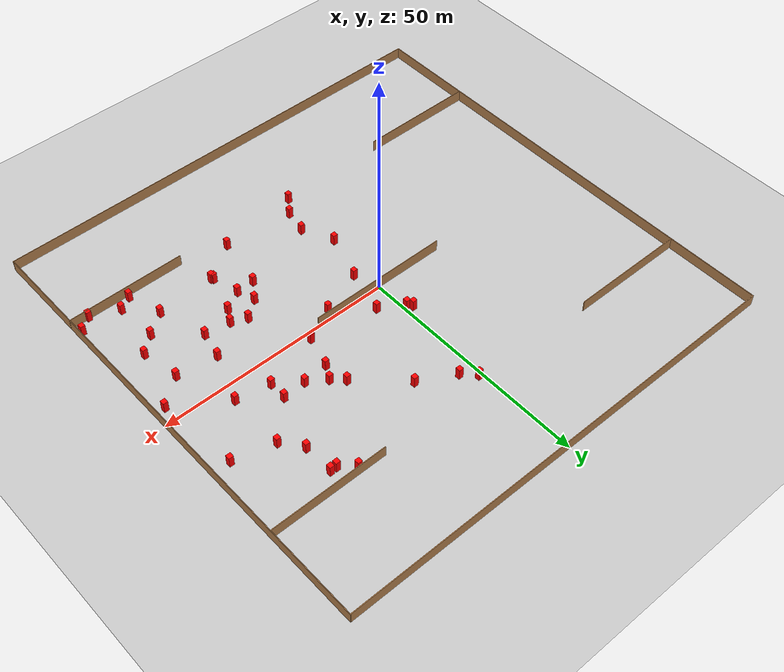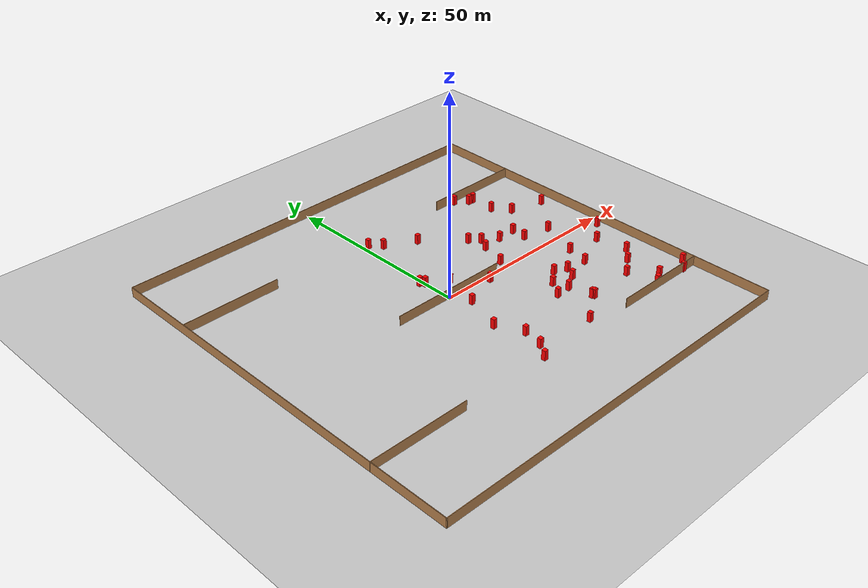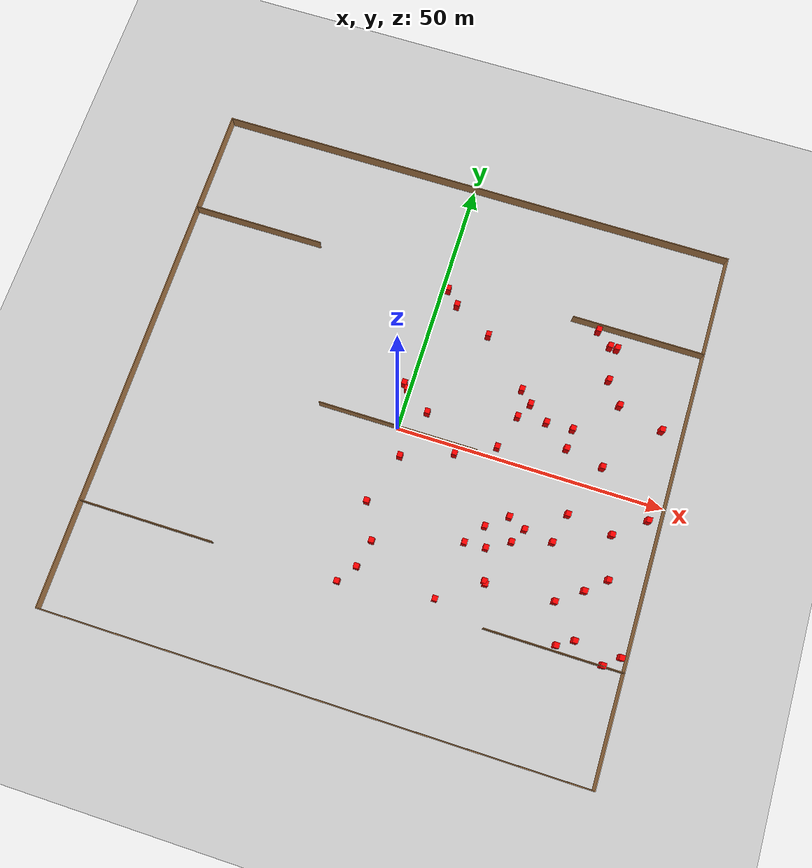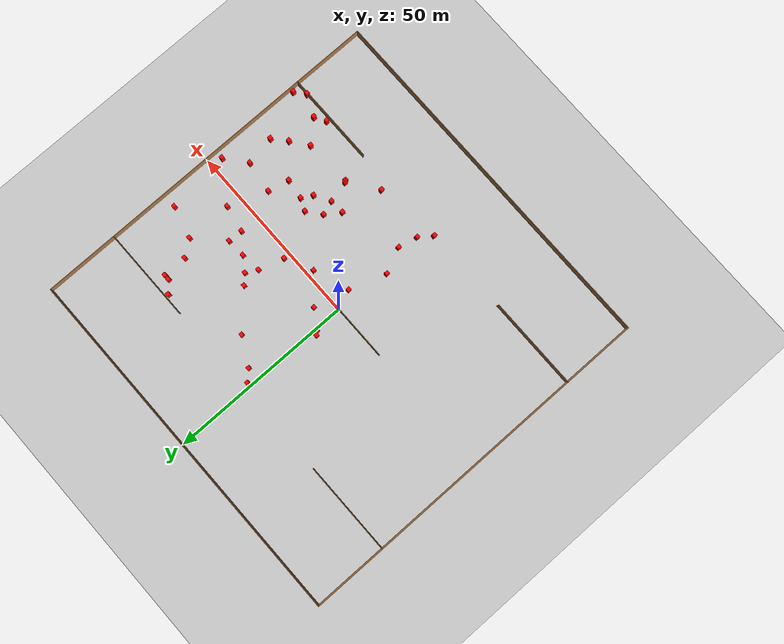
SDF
<sdf version="1.7">
 <world name="default">
  <model name="ground_plane">
   <static>1</static>
   <link name="link">
    <collision name="collision">
     <geometry><plane><normal>0 0 1</normal><size>100 100</size></plane></geometry>
     <surface>
      <contact><collide_bitmask>65535</collide_bitmask></contact>
      <friction><ode><mu>100</mu><mu2>50</mu2></ode></friction>
     </surface>
    </collision>
    <visual name="visual">
     <cast_shadows>0</cast_shadows>
     <geometry><plane><normal>0 0 1</normal><size>100 100</size></plane></geometry>
     <material>
      <script><uri>file://media/materials/scripts/gazebo.material</uri><name>Gazebo/Grey</name></script>
     </material>
    </visual>
   </link>
  </model>
  <model name="my_base_walls">
   <link name="Wall_0">
    <collision name="Wall_0_Collision">
     <geometry><box><size>100.15 0.15 2.5</size></box></geometry>
     <pose>0 0 1.25 0 -0 0</pose>
    </collision>
    <visual name="Wall_0_Visual">
     <pose>0 0 1.25 0 -0 0</pose>
     <geometry><box><size>100.15 0.15 2.5</size></box></geometry>
     <material>
      <script><uri>file://media/materials/scripts/gazebo.material</uri><name>Gazebo/Wood</name></script>
      <ambient>1 1 1 1</ambient>
     </material>
     <meta><layer>0</layer></meta>
    </visual>
    <pose>0 -50 0 0 -0 0</pose>
   </link>
   <link name="Wall_10">
    <collision name="Wall_10_Collision">
     <geometry><box><size>25.15 0.15 2.5</size></box></geometry>
     <pose>0 0 1.25 0 -0 0</pose>
    </collision>
    <visual name="Wall_10_Visual">
     <pose>0 0 1.25 0 -0 0</pose>
     <geometry><box><size>25.15 0.15 2.5</size></box></geometry>
     <material>
      <script><uri>file://media/materials/scripts/gazebo.material</uri><name>Gazebo/Wood</name></script>
      <ambient>1 1 1 1</ambient>
     </material>
     <meta><layer>0</layer></meta>
    </visual>
    <pose>37.5 30 0 0 -0 0</pose>
   </link>
   <link name="Wall_12">
    <collision name="Wall_12_Collision">
     <geometry><box><size>25.15 0.15 2.5</size></box></geometry>
     <pose>0 0 1.25 0 -0 0</pose>
    </collision>
    <visual name="Wall_12_Visual">
     <pose>0 0 1.25 0 -0 0</pose>
     <geometry><box><size>25.15 0.15 2.5</size></box></geometry>
     <material>
      <script><uri>file://media/materials/scripts/gazebo.material</uri><name>Gazebo/Wood</name></script>
      <ambient>1 1 1 1</ambient>
     </material>
     <meta><layer>0</layer></meta>
    </visual>
    <pose>-37.5 -30 0 0 -0 0</pose>
   </link>
   <link name="Wall_14">
    <collision name="Wall_14_Collision">
     <geometry><box><size>25.15 0.15 2.5</size></box></geometry>
     <pose>0 0 1.25 0 -0 0</pose>
    </collision>
    <visual name="Wall_14_Visual">
     <pose>0 0 1.25 0 -0 0</pose>
     <geometry><box><size>25.15 0.15 2.5</size></box></geometry>
     <material>
      <script><uri>file://media/materials/scripts/gazebo.material</uri><name>Gazebo/Wood</name></script>
      <ambient>1 1 1 1</ambient>
     </material>
     <meta><layer>0</layer></meta>
    </visual>
    <pose>37.5 -30 0 0 -0 0</pose>
   </link>
   <link name="Wall_16">
    <collision name="Wall_16_Collision">
     <geometry><box><size>30.15 0.15 2.5</size></box></geometry>
     <pose>0 0 1.25 0 -0 0</pose>
    </collision>
    <visual name="Wall_16_Visual">
     <pose>0 0 1.25 0 -0 0</pose>
     <geometry><box><size>30.15 0.15 2.5</size></box></geometry>
     <material>
      <script><uri>file://media/materials/scripts/gazebo.material</uri><name>Gazebo/Wood</name></script>
      <ambient>1 1 1 1</ambient>
     </material>
     <meta><layer>0</layer></meta>
    </visual>
    <pose>0 0 0 0 -0 3.14159</pose>
   </link>
   <link name="Wall_2">
    <collision name="Wall_2_Collision">
     <geometry><box><size>100.15 0.15 2.5</size></box></geometry>
     <pose>0 0 1.25 0 -0 0</pose>
    </collision>
    <visual name="Wall_2_Visual">
     <pose>0 0 1.25 0 -0 0</pose>
     <geometry><box><size>100.15 0.15 2.5</size></box></geometry>
     <material>
      <script><uri>file://media/materials/scripts/gazebo.material</uri><name>Gazebo/Wood</name></script>
      <ambient>1 1 1 1</ambient>
     </material>
     <meta><layer>0</layer></meta>
    </visual>
    <pose>0 50 0 0 -0 3.14159</pose>
   </link>
   <link name="Wall_4">
    <collision name="Wall_4_Collision">
     <geometry><box><size>100.15 0.15 2.5</size></box></geometry>
     <pose>0 0 1.25 0 -0 0</pose>
    </collision>
    <visual name="Wall_4_Visual">
     <pose>0 0 1.25 0 -0 0</pose>
     <geometry><box><size>100.15 0.15 2.5</size></box></geometry>
     <material>
      <script><uri>file://media/materials/scripts/gazebo.material</uri><name>Gazebo/Wood</name></script>
      <ambient>1 1 1 1</ambient>
     </material>
     <meta><layer>0</layer></meta>
    </visual>
    <pose>50 0 0 0 -0 -1.5708</pose>
   </link>
   <link name="Wall_6">
    <collision name="Wall_6_Collision">
     <geometry><box><size>100.15 0.15 2.5</size></box></geometry>
     <pose>0 0 1.25 0 -0 0</pose>
    </collision>
    <visual name="Wall_6_Visual">
     <pose>0 0 1.25 0 -0 0</pose>
     <geometry><box><size>100.15 0.15 2.5</size></box></geometry>
     <material>
      <script><uri>file://media/materials/scripts/gazebo.material</uri><name>Gazebo/Wood</name></script>
      <ambient>1 1 1 1</ambient>
     </material>
     <meta><layer>0</layer></meta>
    </visual>
    <pose>-50 0 0 0 -0 1.5708</pose>
   </link>
   <link name="Wall_8">
    <collision name="Wall_8_Collision">
     <geometry><box><size>25.15 0.15 2.5</size></box></geometry>
     <pose>0 0 1.25 0 -0 0</pose>
    </collision>
    <visual name="Wall_8_Visual">
     <pose>0 0 1.25 0 -0 0</pose>
     <geometry><box><size>25.15 0.15 2.5</size></box></geometry>
     <material>
      <script><uri>file://media/materials/scripts/gazebo.material</uri><name>Gazebo/Wood</name></script>
      <ambient>1 1 1 1</ambient>
     </material>
     <meta><layer>0</layer></meta>
    </visual>
    <pose>-37.5 30 0 0 -0 0</pose>
   </link>
   <static>1</static>
  </model>
  <model name="box3">
   <static>1</static>
   <link name="link">
    <inertial>
     <mass>1</mass>
     <inertia><ixx>0.083</ixx><ixy>0</ixy><ixz>0</ixz><iyy>0.083</iyy><iyz>0</iyz><izz>0.083</izz></inertia>
    </inertial>
    <collision name="collision"><geometry><box><size>1 1 2.5</size></box></geometry></collision>
    <visual name="visual">
     <geometry><box><size>1 1 2.5</size></box></geometry>
     <material>
      <ambient>1 0 0 1</ambient>
      <diffuse>1 0 0 1</diffuse>
      <specular>0.1 0.1 0.1 1</specular>
      <emissive>0 0 0 0</emissive>
     </material>
    </visual>
   </link>
   <pose>23.1763 -22.4759 1.25 0 -0 0</pose>
  </model>
  <model name="box5">
   <static>1</static>
   <link name="link">
    <inertial>
     <mass>1</mass>
     <inertia><ixx>0.083</ixx><ixy>0</ixy><ixz>0</ixz><iyy>0.083</iyy><iyz>0</iyz><izz>0.083</izz></inertia>
    </inertial>
    <collision name="collision"><geometry><box><size>1 1 2.5</size></box></geometry></collision>
    <visual name="visual">
     <geometry><box><size>1 1 2.5</size></box></geometry>
     <material>
      <ambient>1 0 0 1</ambient>
      <diffuse>1 0 0 1</diffuse>
      <specular>0.1 0.1 0.1 1</specular>
      <emissive>0 0 0 0</emissive>
     </material>
    </visual>
   </link>
   <pose>25.5556 -14.0156 1.25 0 -0 0</pose>
  </model>
  <model name="box6">
   <static>1</static>
   <link name="link">
    <inertial>
     <mass>1</mass>
     <inertia><ixx>0.083</ixx><ixy>0</ixy><ixz>0</ixz><iyy>0.083</iyy><iyz>0</iyz><izz>0.083</izz></inertia>
    </inertial>
    <collision name="collision"><geometry><box><size>1 1 2.5</size></box></geometry></collision>
    <visual name="visual">
     <geometry><box><size>1 1 2.5</size></box></geometry>
     <material>
      <ambient>1 0 0 1</ambient>
      <diffuse>1 0 0 1</diffuse>
      <specular>0.1 0.1 0.1 1</specular>
      <emissive>0 0 0 0</emissive>
     </material>
    </visual>
   </link>
   <pose>10.8495 21.9933 1.25 0 -0 0</pose>
  </model>
  <model name="box8">
   <static>1</static>
   <link name="link">
    <inertial>
     <mass>1</mass>
     <inertia><ixx>0.083</ixx><ixy>0</ixy><ixz>0</ixz><iyy>0.083</iyy><iyz>0</iyz><izz>0.083</izz></inertia>
    </inertial>
    <collision name="collision"><geometry><box><size>1 1 2.5</size></box></geometry></collision>
    <visual name="visual">
     <geometry><box><size>1 1 2.5</size></box></geometry>
     <material>
      <ambient>1 0 0 1</ambient>
      <diffuse>1 0 0 1</diffuse>
      <specular>0.1 0.1 0.1 1</specular>
      <emissive>0 0 0 0</emissive>
     </material>
    </visual>
   </link>
   <pose>2.00673 -4.99949 1.25 0 -0 0</pose>
  </model>
  <model name="box9">
   <static>1</static>
   <link name="link">
    <inertial>
     <mass>1</mass>
     <inertia><ixx>0.083</ixx><ixy>0</ixy><ixz>0</ixz><iyy>0.083</iyy><iyz>0</iyz><izz>0.083</izz></inertia>
    </inertial>
    <collision name="collision"><geometry><box><size>1 1 2.5</size></box></geometry></collision>
    <visual name="visual">
     <geometry><box><size>1 1 2.5</size></box></geometry>
     <material>
      <ambient>1 0 0 1</ambient>
      <diffuse>1 0 0 1</diffuse>
      <specular>0.1 0.1 0.1 1</specular>
      <emissive>0 0 0 0</emissive>
     </material>
    </visual>
   </link>
   <pose>20.3451 8.47321 1.25 0 -0 0</pose>
  </model>
  <model name="box14">
   <static>1</static>
   <link name="link">
    <inertial>
     <mass>1</mass>
     <inertia><ixx>0.083</ixx><ixy>0</ixy><ixz>0</ixz><iyy>0.083</iyy><iyz>0</iyz><izz>0.083</izz></inertia>
    </inertial>
    <collision name="collision"><geometry><box><size>1 1 2.5</size></box></geometry></collision>
    <visual name="visual">
     <geometry><box><size>1 1 2.5</size></box></geometry>
     <material>
      <ambient>1 0 0 1</ambient>
      <diffuse>1 0 0 1</diffuse>
      <specular>0.1 0.1 0.1 1</specular>
      <emissive>0 0 0 0</emissive>
     </material>
    </visual>
   </link>
   <pose>37.737 -28.9766 1.25 0 -0 0</pose>
  </model>
  <model name="box16">
   <static>1</static>
   <link name="link">
    <inertial>
     <mass>1</mass>
     <inertia><ixx>0.083</ixx><ixy>0</ixy><ixz>0</ixz><iyy>0.083</iyy><iyz>0</iyz><izz>0.083</izz></inertia>
    </inertial>
    <collision name="collision"><geometry><box><size>1 1 2.5</size></box></geometry></collision>
    <visual name="visual">
     <geometry><box><size>1 1 2.5</size></box></geometry>
     <material>
      <ambient>1 0 0 1</ambient>
      <diffuse>1 0 0 1</diffuse>
      <specular>0.1 0.1 0.1 1</specular>
      <emissive>0 0 0 0</emissive>
     </material>
    </visual>
   </link>
   <pose>4.33282 4.29537 1.25 0 -0 0</pose>
  </model>
  <model name="box21">
   <static>1</static>
   <link name="link">
    <inertial>
     <mass>1</mass>
     <inertia><ixx>0.083</ixx><ixy>0</ixy><ixz>0</ixz><iyy>0.083</iyy><iyz>0</iyz><izz>0.083</izz></inertia>
    </inertial>
    <collision name="collision"><geometry><box><size>1 1 2.5</size></box></geometry></collision>
    <visual name="visual">
     <geometry><box><size>1 1 2.5</size></box></geometry>
     <material>
      <ambient>1 0 0 1</ambient>
      <diffuse>1 0 0 1</diffuse>
      <specular>0.1 0.1 0.1 1</specular>
      <emissive>0 0 0 0</emissive>
     </material>
    </visual>
   </link>
   <pose>0.722035 -26.3664 1.25 0 -0 0</pose>
  </model>
  <model name="box25">
   <static>1</static>
   <link name="link">
    <inertial>
     <mass>1</mass>
     <inertia><ixx>0.083</ixx><ixy>0</ixy><ixz>0</ixz><iyy>0.083</iyy><iyz>0</iyz><izz>0.083</izz></inertia>
    </inertial>
    <collision name="collision"><geometry><box><size>1 1 2.5</size></box></geometry></collision>
    <visual name="visual">
     <geometry><box><size>1 1 2.5</size></box></geometry>
     <material>
      <ambient>1 0 0 1</ambient>
      <diffuse>1 0 0 1</diffuse>
      <specular>0.1 0.1 0.1 1</specular>
      <emissive>0 0 0 0</emissive>
     </material>
    </visual>
   </link>
   <pose>40.6324 -27.2331 1.25 0 -0 0</pose>
  </model>
  <model name="box26">
   <static>1</static>
   <link name="link">
    <inertial>
     <mass>1</mass>
     <inertia><ixx>0.083</ixx><ixy>0</ixy><ixz>0</ixz><iyy>0.083</iyy><iyz>0</iyz><izz>0.083</izz></inertia>
    </inertial>
    <collision name="collision"><geometry><box><size>1 1 2.5</size></box></geometry></collision>
    <visual name="visual">
     <geometry><box><size>1 1 2.5</size></box></geometry>
     <material>
      <ambient>1 0 0 1</ambient>
      <diffuse>1 0 0 1</diffuse>
      <specular>0.1 0.1 0.1 1</specular>
      <emissive>0 0 0 0</emissive>
     </material>
    </visual>
   </link>
   <pose>43.5856 -15.3946 1.25 0 -0 0</pose>
  </model>
  <model name="box28">
   <static>1</static>
   <link name="link">
    <inertial>
     <mass>1</mass>
     <inertia><ixx>0.083</ixx><ixy>0</ixy><ixz>0</ixz><iyy>0.083</iyy><iyz>0</iyz><izz>0.083</izz></inertia>
    </inertial>
    <collision name="collision"><geometry><box><size>1 1 2.5</size></box></geometry></collision>
    <visual name="visual">
     <geometry><box><size>1 1 2.5</size></box></geometry>
     <material>
      <ambient>1 0 0 1</ambient>
      <diffuse>1 0 0 1</diffuse>
      <specular>0.1 0.1 0.1 1</specular>
      <emissive>0 0 0 0</emissive>
     </material>
    </visual>
   </link>
   <pose>49.0233 -27.6356 1.25 0 -0 0</pose>
  </model>
  <model name="box30">
   <static>1</static>
   <link name="link">
    <inertial>
     <mass>1</mass>
     <inertia><ixx>0.083</ixx><ixy>0</ixy><ixz>0</ixz><iyy>0.083</iyy><iyz>0</iyz><izz>0.083</izz></inertia>
    </inertial>
    <collision name="collision"><geometry><box><size>1 1 2.5</size></box></geometry></collision>
    <visual name="visual">
     <geometry><box><size>1 1 2.5</size></box></geometry>
     <material>
      <ambient>1 0 0 1</ambient>
      <diffuse>1 0 0 1</diffuse>
      <specular>0.1 0.1 0.1 1</specular>
      <emissive>0 0 0 0</emissive>
     </material>
    </visual>
   </link>
   <pose>30.5931 9.21803 1.25 0 -0 0</pose>
  </model>
  <model name="box31">
   <static>1</static>
   <link name="link">
    <inertial>
     <mass>1</mass>
     <inertia><ixx>0.083</ixx><ixy>0</ixy><ixz>0</ixz><iyy>0.083</iyy><iyz>0</iyz><izz>0.083</izz></inertia>
    </inertial>
    <collision name="collision"><geometry><box><size>1 1 2.5</size></box></geometry></collision>
    <visual name="visual">
     <geometry><box><size>1 1 2.5</size></box></geometry>
     <material>
      <ambient>1 0 0 1</ambient>
      <diffuse>1 0 0 1</diffuse>
      <specular>0.1 0.1 0.1 1</specular>
      <emissive>0 0 0 0</emissive>
     </material>
    </visual>
   </link>
   <pose>-1.77396 -29.8208 1.25 0 -0 0</pose>
  </model>
  <model name="box32">
   <static>1</static>
   <link name="link">
    <inertial>
     <mass>1</mass>
     <inertia><ixx>0.083</ixx><ixy>0</ixy><ixz>0</ixz><iyy>0.083</iyy><iyz>0</iyz><izz>0.083</izz></inertia>
    </inertial>
    <collision name="collision"><geometry><box><size>1 1 2.5</size></box></geometry></collision>
    <visual name="visual">
     <geometry><box><size>1 1 2.5</size></box></geometry>
     <material>
      <ambient>1 0 0 1</ambient>
      <diffuse>1 0 0 1</diffuse>
      <specular>0.1 0.1 0.1 1</specular>
      <emissive>0 0 0 0</emissive>
     </material>
    </visual>
   </link>
   <pose>42.1976 -7.45792 1.25 0 -0 0</pose>
  </model>
  <model name="box36">
   <static>1</static>
   <link name="link">
    <inertial>
     <mass>1</mass>
     <inertia><ixx>0.083</ixx><ixy>0</ixy><ixz>0</ixz><iyy>0.083</iyy><iyz>0</iyz><izz>0.083</izz></inertia>
    </inertial>
    <collision name="collision"><geometry><box><size>1 1 2.5</size></box></geometry></collision>
    <visual name="visual">
     <geometry><box><size>1 1 2.5</size></box></geometry>
     <material>
      <ambient>1 0 0 1</ambient>
      <diffuse>1 0 0 1</diffuse>
      <specular>0.1 0.1 0.1 1</specular>
      <emissive>0 0 0 0</emissive>
     </material>
    </visual>
   </link>
   <pose>32.4796 -11.8787 1.25 0 -0 0</pose>
  </model>
  <model name="box37">
   <static>1</static>
   <link name="link">
    <inertial>
     <mass>1</mass>
     <inertia><ixx>0.083</ixx><ixy>0</ixy><ixz>0</ixz><iyy>0.083</iyy><iyz>0</iyz><izz>0.083</izz></inertia>
    </inertial>
    <collision name="collision"><geometry><box><size>1 1 2.5</size></box></geometry></collision>
    <visual name="visual">
     <geometry><box><size>1 1 2.5</size></box></geometry>
     <material>
      <ambient>1 0 0 1</ambient>
      <diffuse>1 0 0 1</diffuse>
      <specular>0.1 0.1 0.1 1</specular>
      <emissive>0 0 0 0</emissive>
     </material>
    </visual>
   </link>
   <pose>34.5388 20.2603 1.25 0 -0 0</pose>
  </model>
  <model name="box38">
   <static>1</static>
   <link name="link">
    <inertial>
     <mass>1</mass>
     <inertia><ixx>0.083</ixx><ixy>0</ixy><ixz>0</ixz><iyy>0.083</iyy><iyz>0</iyz><izz>0.083</izz></inertia>
    </inertial>
    <collision name="collision"><geometry><box><size>1 1 2.5</size></box></geometry></collision>
    <visual name="visual">
     <geometry><box><size>1 1 2.5</size></box></geometry>
     <material>
      <ambient>1 0 0 1</ambient>
      <diffuse>1 0 0 1</diffuse>
      <specular>0.1 0.1 0.1 1</specular>
      <emissive>0 0 0 0</emissive>
     </material>
    </visual>
   </link>
   <pose>46.287 -29.8516 1.25 0 -0 0</pose>
  </model>
  <model name="box40">
   <static>1</static>
   <link name="link">
    <inertial>
     <mass>1</mass>
     <inertia><ixx>0.083</ixx><ixy>0</ixy><ixz>0</ixz><iyy>0.083</iyy><iyz>0</iyz><izz>0.083</izz></inertia>
    </inertial>
    <collision name="collision"><geometry><box><size>1 1 2.5</size></box></geometry></collision>
    <visual name="visual">
     <geometry><box><size>1 1 2.5</size></box></geometry>
     <material>
      <ambient>1 0 0 1</ambient>
      <diffuse>1 0 0 1</diffuse>
      <specular>0.1 0.1 0.1 1</specular>
      <emissive>0 0 0 0</emissive>
     </material>
    </visual>
   </link>
   <pose>37.5108 3.95148 1.25 0 -0 0</pose>
  </model>
  <model name="box45">
   <static>1</static>
   <link name="link">
    <inertial>
     <mass>1</mass>
     <inertia><ixx>0.083</ixx><ixy>0</ixy><ixz>0</ixz><iyy>0.083</iyy><iyz>0</iyz><izz>0.083</izz></inertia>
    </inertial>
    <collision name="collision"><geometry><box><size>1 1 2.5</size></box></geometry></collision>
    <visual name="visual">
     <geometry><box><size>1 1 2.5</size></box></geometry>
     <material>
      <ambient>1 0 0 1</ambient>
      <diffuse>1 0 0 1</diffuse>
      <specular>0.1 0.1 0.1 1</specular>
      <emissive>0 0 0 0</emissive>
     </material>
    </visual>
   </link>
   <pose>11.3143 -1.65347 1.25 0 -0 0</pose>
  </model>
  <model name="box48">
   <static>1</static>
   <link name="link">
    <inertial>
     <mass>1</mass>
     <inertia><ixx>0.083</ixx><ixy>0</ixy><ixz>0</ixz><iyy>0.083</iyy><iyz>0</iyz><izz>0.083</izz></inertia>
    </inertial>
    <collision name="collision"><geometry><box><size>1 1 2.5</size></box></geometry></collision>
    <visual name="visual">
     <geometry><box><size>1 1 2.5</size></box></geometry>
     <material>
      <ambient>1 0 0 1</ambient>
      <diffuse>1 0 0 1</diffuse>
      <specular>0.1 0.1 0.1 1</specular>
      <emissive>0 0 0 0</emissive>
     </material>
    </visual>
   </link>
   <pose>1.04427 28.5568 1.25 0 -0 0</pose>
  </model>
  <model name="box50">
   <static>1</static>
   <link name="link">
    <inertial>
     <mass>1</mass>
     <inertia><ixx>0.083</ixx><ixy>0</ixy><ixz>0</ixz><iyy>0.083</iyy><iyz>0</iyz><izz>0.083</izz></inertia>
    </inertial>
    <collision name="collision"><geometry><box><size>1 1 2.5</size></box></geometry></collision>
    <visual name="visual">
     <geometry><box><size>1 1 2.5</size></box></geometry>
     <material>
      <ambient>1 0 0 1</ambient>
      <diffuse>1 0 0 1</diffuse>
      <specular>0.1 0.1 0.1 1</specular>
      <emissive>0 0 0 0</emissive>
     </material>
    </visual>
   </link>
   <pose>15.4877 -27.624 1.25 0 -0 0</pose>
  </model>
  <model name="box52">
   <static>1</static>
   <link name="link">
    <inertial>
     <mass>1</mass>
     <inertia><ixx>0.083</ixx><ixy>0</ixy><ixz>0</ixz><iyy>0.083</iyy><iyz>0</iyz><izz>0.083</izz></inertia>
    </inertial>
    <collision name="collision"><geometry><box><size>1 1 2.5</size></box></geometry></collision>
    <visual name="visual">
     <geometry><box><size>1 1 2.5</size></box></geometry>
     <material>
      <ambient>1 0 0 1</ambient>
      <diffuse>1 0 0 1</diffuse>
      <specular>0.1 0.1 0.1 1</specular>
      <emissive>0 0 0 0</emissive>
     </material>
    </visual>
   </link>
   <pose>-1.30681 8.3452 1.25 0 -0 0</pose>
  </model>
  <model name="box53">
   <static>1</static>
   <link name="link">
    <inertial>
     <mass>1</mass>
     <inertia><ixx>0.083</ixx><ixy>0</ixy><ixz>0</ixz><iyy>0.083</iyy><iyz>0</iyz><izz>0.083</izz></inertia>
    </inertial>
    <collision name="collision"><geometry><box><size>1 1 2.5</size></box></geometry></collision>
    <visual name="visual">
     <geometry><box><size>1 1 2.5</size></box></geometry>
     <material>
      <ambient>1 0 0 1</ambient>
      <diffuse>1 0 0 1</diffuse>
      <specular>0.1 0.1 0.1 1</specular>
      <emissive>0 0 0 0</emissive>
     </material>
    </visual>
   </link>
   <pose>30.2579 29.0921 1.25 0 -0 0</pose>
  </model>
  <model name="box56">
   <static>1</static>
   <link name="link">
    <inertial>
     <mass>1</mass>
     <inertia><ixx>0.083</ixx><ixy>0</ixy><ixz>0</ixz><iyy>0.083</iyy><iyz>0</iyz><izz>0.083</izz></inertia>
    </inertial>
    <collision name="collision"><geometry><box><size>1 1 2.5</size></box></geometry></collision>
    <visual name="visual">
     <geometry><box><size>1 1 2.5</size></box></geometry>
     <material>
      <ambient>1 0 0 1</ambient>
      <diffuse>1 0 0 1</diffuse>
      <specular>0.1 0.1 0.1 1</specular>
      <emissive>0 0 0 0</emissive>
     </material>
    </visual>
   </link>
   <pose>1.83258 -21.2288 1.25 0 -0 0</pose>
  </model>
  <model name="box59">
   <static>1</static>
   <link name="link">
    <inertial>
     <mass>1</mass>
     <inertia><ixx>0.083</ixx><ixy>0</ixy><ixz>0</ixz><iyy>0.083</iyy><iyz>0</iyz><izz>0.083</izz></inertia>
    </inertial>
    <collision name="collision"><geometry><box><size>1 1 2.5</size></box></geometry></collision>
    <visual name="visual">
     <geometry><box><size>1 1 2.5</size></box></geometry>
     <material>
      <ambient>1 0 0 1</ambient>
      <diffuse>1 0 0 1</diffuse>
      <specular>0.1 0.1 0.1 1</specular>
      <emissive>0 0 0 0</emissive>
     </material>
    </visual>
   </link>
   <pose>27.1607 -11.1651 1.25 0 -0 0</pose>
  </model>
  <model name="box60">
   <static>1</static>
   <link name="link">
    <inertial>
     <mass>1</mass>
     <inertia><ixx>0.083</ixx><ixy>0</ixy><ixz>0</ixz><iyy>0.083</iyy><iyz>0</iyz><izz>0.083</izz></inertia>
    </inertial>
    <collision name="collision"><geometry><box><size>1 1 2.5</size></box></geometry></collision>
    <visual name="visual">
     <geometry><box><size>1 1 2.5</size></box></geometry>
     <material>
      <ambient>1 0 0 1</ambient>
      <diffuse>1 0 0 1</diffuse>
      <specular>0.1 0.1 0.1 1</specular>
      <emissive>0 0 0 0</emissive>
     </material>
    </visual>
   </link>
   <pose>33.1151 26.6832 1.25 0 -0 0</pose>
  </model>
  <model name="box61">
   <static>1</static>
   <link name="link">
    <inertial>
     <mass>1</mass>
     <inertia><ixx>0.083</ixx><ixy>0</ixy><ixz>0</ixz><iyy>0.083</iyy><iyz>0</iyz><izz>0.083</izz></inertia>
    </inertial>
    <collision name="collision"><geometry><box><size>1 1 2.5</size></box></geometry></collision>
    <visual name="visual">
     <geometry><box><size>1 1 2.5</size></box></geometry>
     <material>
      <ambient>1 0 0 1</ambient>
      <diffuse>1 0 0 1</diffuse>
      <specular>0.1 0.1 0.1 1</specular>
      <emissive>0 0 0 0</emissive>
     </material>
    </visual>
   </link>
   <pose>21.4921 -16.3871 1.25 0 -0 0</pose>
  </model>
  <model name="box62">
   <static>1</static>
   <link name="link">
    <inertial>
     <mass>1</mass>
     <inertia><ixx>0.083</ixx><ixy>0</ixy><ixz>0</ixz><iyy>0.083</iyy><iyz>0</iyz><izz>0.083</izz></inertia>
    </inertial>
    <collision name="collision"><geometry><box><size>1 1 2.5</size></box></geometry></collision>
    <visual name="visual">
     <geometry><box><size>1 1 2.5</size></box></geometry>
     <material>
      <ambient>1 0 0 1</ambient>
      <diffuse>1 0 0 1</diffuse>
      <specular>0.1 0.1 0.1 1</specular>
      <emissive>0 0 0 0</emissive>
     </material>
    </visual>
   </link>
   <pose>17.6038 -16.5804 1.25 0 -0 0</pose>
  </model>
  <model name="box63">
   <static>1</static>
   <link name="link">
    <inertial>
     <mass>1</mass>
     <inertia><ixx>0.083</ixx><ixy>0</ixy><ixz>0</ixz><iyy>0.083</iyy><iyz>0</iyz><izz>0.083</izz></inertia>
    </inertial>
    <collision name="collision"><geometry><box><size>1 1 2.5</size></box></geometry></collision>
    <visual name="visual">
     <geometry><box><size>1 1 2.5</size></box></geometry>
     <material>
      <ambient>1 0 0 1</ambient>
      <diffuse>1 0 0 1</diffuse>
      <specular>0.1 0.1 0.1 1</specular>
      <emissive>0 0 0 0</emissive>
     </material>
    </visual>
   </link>
   <pose>30.4641 5.33879 1.25 0 -0 0</pose>
  </model>
  <model name="box65">
   <static>1</static>
   <link name="link">
    <inertial>
     <mass>1</mass>
     <inertia><ixx>0.083</ixx><ixy>0</ixy><ixz>0</ixz><iyy>0.083</iyy><iyz>0</iyz><izz>0.083</izz></inertia>
    </inertial>
    <collision name="collision"><geometry><box><size>1 1 2.5</size></box></geometry></collision>
    <visual name="visual">
     <geometry><box><size>1 1 2.5</size></box></geometry>
     <material>
      <ambient>1 0 0 1</ambient>
      <diffuse>1 0 0 1</diffuse>
      <specular>0.1 0.1 0.1 1</specular>
      <emissive>0 0 0 0</emissive>
     </material>
    </visual>
   </link>
   <pose>3.54281 25.9941 1.25 0 -0 0</pose>
  </model>
  <model name="box66">
   <static>1</static>
   <link name="link">
    <inertial>
     <mass>1</mass>
     <inertia><ixx>0.083</ixx><ixy>0</ixy><ixz>0</ixz><iyy>0.083</iyy><iyz>0</iyz><izz>0.083</izz></inertia>
    </inertial>
    <collision name="collision"><geometry><box><size>1 1 2.5</size></box></geometry></collision>
    <visual name="visual">
     <geometry><box><size>1 1 2.5</size></box></geometry>
     <material>
      <ambient>1 0 0 1</ambient>
      <diffuse>1 0 0 1</diffuse>
      <specular>0.1 0.1 0.1 1</specular>
      <emissive>0 0 0 0</emissive>
     </material>
    </visual>
   </link>
   <pose>23.9591 -9.78499 1.25 0 -0 0</pose>
  </model>
  <model name="box68">
   <static>1</static>
   <link name="link">
    <inertial>
     <mass>1</mass>
     <inertia><ixx>0.083</ixx><ixy>0</ixy><ixz>0</ixz><iyy>0.083</iyy><iyz>0</iyz><izz>0.083</izz></inertia>
    </inertial>
    <collision name="collision"><geometry><box><size>1 1 2.5</size></box></geometry></collision>
    <visual name="visual">
     <geometry><box><size>1 1 2.5</size></box></geometry>
     <material>
      <ambient>1 0 0 1</ambient>
      <diffuse>1 0 0 1</diffuse>
      <specular>0.1 0.1 0.1 1</specular>
      <emissive>0 0 0 0</emissive>
     </material>
    </visual>
   </link>
   <pose>25.6705 8.98396 1.25 0 -0 0</pose>
  </model>
  <model name="box69">
   <static>1</static>
   <link name="link">
    <inertial>
     <mass>1</mass>
     <inertia><ixx>0.083</ixx><ixy>0</ixy><ixz>0</ixz><iyy>0.083</iyy><iyz>0</iyz><izz>0.083</izz></inertia>
    </inertial>
    <collision name="collision"><geometry><box><size>1 1 2.5</size></box></geometry></collision>
    <visual name="visual">
     <geometry><box><size>1 1 2.5</size></box></geometry>
     <material>
      <ambient>1 0 0 1</ambient>
      <diffuse>1 0 0 1</diffuse>
      <specular>0.1 0.1 0.1 1</specular>
      <emissive>0 0 0 0</emissive>
     </material>
    </visual>
   </link>
   <pose>-0.497232 7.42132 1.25 0 -0 0</pose>
  </model>
  <model name="box73">
   <static>1</static>
   <link name="link">
    <inertial>
     <mass>1</mass>
     <inertia><ixx>0.083</ixx><ixy>0</ixy><ixz>0</ixz><iyy>0.083</iyy><iyz>0</iyz><izz>0.083</izz></inertia>
    </inertial>
    <collision name="collision"><geometry><box><size>1 1 2.5</size></box></geometry></collision>
    <visual name="visual">
     <geometry><box><size>1 1 2.5</size></box></geometry>
     <material>
      <ambient>1 0 0 1</ambient>
      <diffuse>1 0 0 1</diffuse>
      <specular>0.1 0.1 0.1 1</specular>
      <emissive>0 0 0 0</emissive>
     </material>
    </visual>
   </link>
   <pose>40.0498 -18.4951 1.25 0 -0 0</pose>
  </model>
  <model name="box81">
   <static>1</static>
   <link name="link">
    <inertial>
     <mass>1</mass>
     <inertia><ixx>0.083</ixx><ixy>0</ixy><ixz>0</ixz><iyy>0.083</iyy><iyz>0</iyz><izz>0.083</izz></inertia>
    </inertial>
    <collision name="collision"><geometry><box><size>1 1 2.5</size></box></geometry></collision>
    <visual name="visual">
     <geometry><box><size>1 1 2.5</size></box></geometry>
     <material>
      <ambient>1 0 0 1</ambient>
      <diffuse>1 0 0 1</diffuse>
      <specular>0.1 0.1 0.1 1</specular>
      <emissive>0 0 0 0</emissive>
     </material>
    </visual>
   </link>
   <pose>20.2606 -12.7186 1.25 0 -0 0</pose>
  </model>
  <model name="box82">
   <static>1</static>
   <link name="link">
    <inertial>
     <mass>1</mass>
     <inertia><ixx>0.083</ixx><ixy>0</ixy><ixz>0</ixz><iyy>0.083</iyy><iyz>0</iyz><izz>0.083</izz></inertia>
    </inertial>
    <collision name="collision"><geometry><box><size>1 1 2.5</size></box></geometry></collision>
    <visual name="visual">
     <geometry><box><size>1 1 2.5</size></box></geometry>
     <material>
      <ambient>1 0 0 1</ambient>
      <diffuse>1 0 0 1</diffuse>
      <specular>0.1 0.1 0.1 1</specular>
      <emissive>0 0 0 0</emissive>
     </material>
    </visual>
   </link>
   <pose>19.7045 13.6776 1.25 0 -0 0</pose>
  </model>
  <model name="box83">
   <static>1</static>
   <link name="link">
    <inertial>
     <mass>1</mass>
     <inertia><ixx>0.083</ixx><ixy>0</ixy><ixz>0</ixz><iyy>0.083</iyy><iyz>0</iyz><izz>0.083</izz></inertia>
    </inertial>
    <collision name="collision"><geometry><box><size>1 1 2.5</size></box></geometry></collision>
    <visual name="visual">
     <geometry><box><size>1 1 2.5</size></box></geometry>
     <material>
      <ambient>1 0 0 1</ambient>
      <diffuse>1 0 0 1</diffuse>
      <specular>0.1 0.1 0.1 1</specular>
      <emissive>0 0 0 0</emissive>
     </material>
    </visual>
   </link>
   <pose>47.7504 -3.05081 1.25 0 -0 0</pose>
  </model>
  <model name="box85">
   <static>1</static>
   <link name="link">
    <inertial>
     <mass>1</mass>
     <inertia><ixx>0.083</ixx><ixy>0</ixy><ixz>0</ixz><iyy>0.083</iyy><iyz>0</iyz><izz>0.083</izz></inertia>
    </inertial>
    <collision name="collision"><geometry><box><size>1 1 2.5</size></box></geometry></collision>
    <visual name="visual">
     <geometry><box><size>1 1 2.5</size></box></geometry>
     <material>
      <ambient>1 0 0 1</ambient>
      <diffuse>1 0 0 1</diffuse>
      <specular>0.1 0.1 0.1 1</specular>
      <emissive>0 0 0 0</emissive>
     </material>
    </visual>
   </link>
   <pose>46.1102 13.8515 1.25 0 -0 0</pose>
  </model>
  <model name="box86">
   <static>1</static>
   <link name="link">
    <inertial>
     <mass>1</mass>
     <inertia><ixx>0.083</ixx><ixy>0</ixy><ixz>0</ixz><iyy>0.083</iyy><iyz>0</iyz><izz>0.083</izz></inertia>
    </inertial>
    <collision name="collision"><geometry><box><size>1 1 2.5</size></box></geometry></collision>
    <visual name="visual">
     <geometry><box><size>1 1 2.5</size></box></geometry>
     <material>
      <ambient>1 0 0 1</ambient>
      <diffuse>1 0 0 1</diffuse>
      <specular>0.1 0.1 0.1 1</specular>
      <emissive>0 0 0 0</emissive>
     </material>
    </visual>
   </link>
   <pose>37.6204 16.1135 1.25 0 -0 0</pose>
  </model>
  <model name="box87">
   <static>1</static>
   <link name="link">
    <inertial>
     <mass>1</mass>
     <inertia><ixx>0.083</ixx><ixy>0</ixy><ixz>0</ixz><iyy>0.083</iyy><iyz>0</iyz><izz>0.083</izz></inertia>
    </inertial>
    <collision name="collision"><geometry><box><size>1 1 2.5</size></box></geometry></collision>
    <visual name="visual">
     <geometry><box><size>1 1 2.5</size></box></geometry>
     <material>
      <ambient>1 0 0 1</ambient>
      <diffuse>1 0 0 1</diffuse>
      <specular>0.1 0.1 0.1 1</specular>
      <emissive>0 0 0 0</emissive>
     </material>
    </visual>
   </link>
   <pose>35.5894 -21.7801 1.25 0 -0 0</pose>
  </model>
  <model name="box88">
   <static>1</static>
   <link name="link">
    <inertial>
     <mass>1</mass>
     <inertia><ixx>0.083</ixx><ixy>0</ixy><ixz>0</ixz><iyy>0.083</iyy><iyz>0</iyz><izz>0.083</izz></inertia>
    </inertial>
    <collision name="collision"><geometry><box><size>1 1 2.5</size></box></geometry></collision>
    <visual name="visual">
     <geometry><box><size>1 1 2.5</size></box></geometry>
     <material>
      <ambient>1 0 0 1</ambient>
      <diffuse>1 0 0 1</diffuse>
      <specular>0.1 0.1 0.1 1</specular>
      <emissive>0 0 0 0</emissive>
     </material>
    </visual>
   </link>
   <pose>22.8895 -22.0936 1.25 0 -0 0</pose>
  </model>
  <model name="box89">
   <static>1</static>
   <link name="link">
    <inertial>
     <mass>1</mass>
     <inertia><ixx>0.083</ixx><ixy>0</ixy><ixz>0</ixz><iyy>0.083</iyy><iyz>0</iyz><izz>0.083</izz></inertia>
    </inertial>
    <collision name="collision"><geometry><box><size>1 1 2.5</size></box></geometry></collision>
    <visual name="visual">
     <geometry><box><size>1 1 2.5</size></box></geometry>
     <material>
      <ambient>1 0 0 1</ambient>
      <diffuse>1 0 0 1</diffuse>
      <specular>0.1 0.1 0.1 1</specular>
      <emissive>0 0 0 0</emissive>
     </material>
    </visual>
   </link>
   <pose>21.9706 11.4652 1.25 0 -0 0</pose>
  </model>
  <model name="box90">
   <static>1</static>
   <link name="link">
    <inertial>
     <mass>1</mass>
     <inertia><ixx>0.083</ixx><ixy>0</ixy><ixz>0</ixz><iyy>0.083</iyy><iyz>0</iyz><izz>0.083</izz></inertia>
    </inertial>
    <collision name="collision"><geometry><box><size>1 1 2.5</size></box></geometry></collision>
    <visual name="visual">
     <geometry><box><size>1 1 2.5</size></box></geometry>
     <material>
      <ambient>1 0 0 1</ambient>
      <diffuse>1 0 0 1</diffuse>
      <specular>0.1 0.1 0.1 1</specular>
      <emissive>0 0 0 0</emissive>
     </material>
    </visual>
   </link>
   <pose>18.3581 1.85142 1.25 0 -0 0</pose>
  </model>
  <model name="box91">
   <static>1</static>
   <link name="link">
    <inertial>
     <mass>1</mass>
     <inertia><ixx>0.083</ixx><ixy>0</ixy><ixz>0</ixz><iyy>0.083</iyy><iyz>0</iyz><izz>0.083</izz></inertia>
    </inertial>
    <collision name="collision"><geometry><box><size>1 1 2.5</size></box></geometry></collision>
    <visual name="visual">
     <geometry><box><size>1 1 2.5</size></box></geometry>
     <material>
      <ambient>1 0 0 1</ambient>
      <diffuse>1 0 0 1</diffuse>
      <specular>0.1 0.1 0.1 1</specular>
      <emissive>0 0 0 0</emissive>
     </material>
    </visual>
   </link>
   <pose>34.4541 26.6506 1.25 0 -0 0</pose>
  </model>
  <model name="box94">
   <static>1</static>
   <link name="link">
    <inertial>
     <mass>1</mass>
     <inertia><ixx>0.083</ixx><ixy>0</ixy><ixz>0</ixz><iyy>0.083</iyy><iyz>0</iyz><izz>0.083</izz></inertia>
    </inertial>
    <collision name="collision"><geometry><box><size>1 1 2.5</size></box></geometry></collision>
    <visual name="visual">
     <geometry><box><size>1 1 2.5</size></box></geometry>
     <material>
      <ambient>1 0 0 1</ambient>
      <diffuse>1 0 0 1</diffuse>
      <specular>0.1 0.1 0.1 1</specular>
      <emissive>0 0 0 0</emissive>
     </material>
    </visual>
   </link>
   <pose>-1.18129 -14.6914 1.25 0 -0 0</pose>
  </model>
  <model name="box97">
   <static>1</static>
   <link name="link">
    <inertial>
     <mass>1</mass>
     <inertia><ixx>0.083</ixx><ixy>0</ixy><ixz>0</ixz><iyy>0.083</iyy><iyz>0</iyz><izz>0.083</izz></inertia>
    </inertial>
    <collision name="collision"><geometry><box><size>1 1 2.5</size></box></geometry></collision>
    <visual name="visual">
     <geometry><box><size>1 1 2.5</size></box></geometry>
     <material>
      <ambient>1 0 0 1</ambient>
      <diffuse>1 0 0 1</diffuse>
      <specular>0.1 0.1 0.1 1</specular>
      <emissive>0 0 0 0</emissive>
     </material>
    </visual>
   </link>
   <pose>33.7885 -6.2697 1.25 0 -0 0</pose>
  </model>
 </world>
</sdf>
